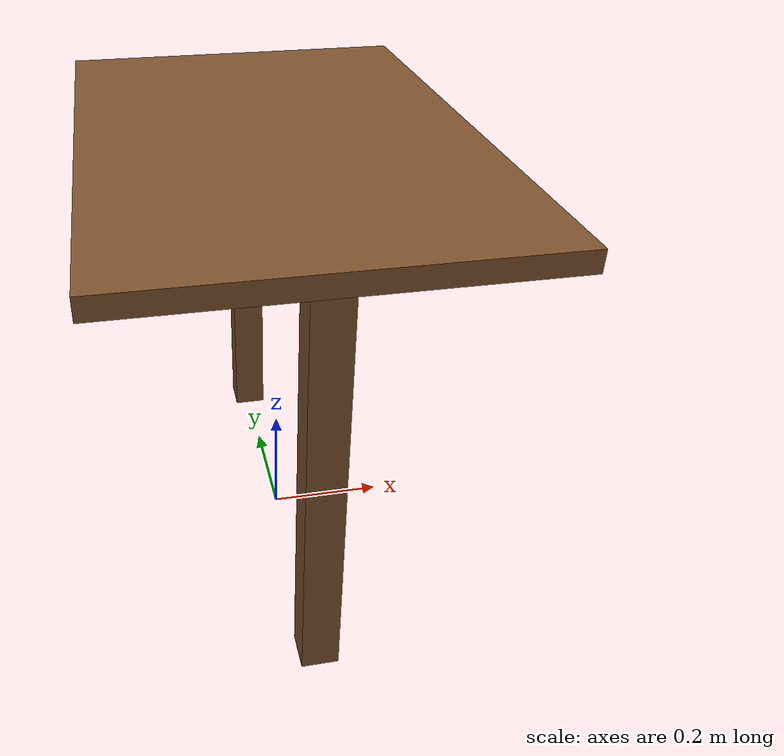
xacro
<?xml version="1.0" ?>
<robot name="lab_phone_table" xmlns:xacro="http://ros.org/wiki/xacro">

<!-- Property List -->
<xacro:property name="pi" value="3.1415926535897931" />
<xacro:property name="table_base_length" value="0.9144" />
<xacro:property name="table_thickness" value="0.033" />
<xacro:property name="table_base_width" value="0.6096" />

<xacro:property name="leg_height" value="0.7366" />
<xacro:property name="leg_length" value="0.06" />
<xacro:property name="leg_width" value="0.06" />

<!-- Color macros -->
<xacro:macro name="material_brown_transparent">
        <material name="brown_transparent">
                <color rgba="${139/255} ${69/255} ${19/255} 0.4" />
        </material>
</xacro:macro>

<!-- Base Link -->
<link name = "table_base">
<inertial>
 <origin xyz = "0 0 ${leg_height}" />
 <mass value = "1.0" />
 <inertia ixx="1" ixy="0"  ixz="0"
               iyy="1" iyz="0"
               izz="1" />
 </inertial>
<visual>
  <origin xyz = "0 0 ${leg_height}" />
  <geometry>
     <box size="${table_base_width} ${table_base_length}  ${table_thickness}"/>
  </geometry>
  <material name="brown_transparent"/>
</visual>
<collision>
  <origin xyz = "0 0 ${leg_height}" />
  <geometry>
     <box size="${table_base_width} ${table_base_length}  ${table_thickness}"/>
  </geometry>
  <material name="brown_transparent"/>
</collision>
</link>

<!--First Leg -->
<link name = "first_leg">
<inertial>
      <mass value="1.0" />
      <origin xyz="0 0 ${-leg_height}" />
      <inertia ixx="0.1" ixy="0"  ixz="0"
               iyy="0.1" iyz="0"
               izz="0.01" />
    </inertial>
<visual>
  <origin xyz="0 0 ${-leg_height}" rpy="0 0 0" />
  <geometry>
        <box size="${leg_width} ${leg_width}  ${leg_height}"/>
  </geometry>
  <material name="brown_transparent"/>
</visual>
<collision>
  <origin xyz="0 0 ${-leg_height}" rpy="0 0 0" />
  <geometry>
        <box size="${leg_width} ${leg_width}  ${leg_height}"/>
  </geometry>
  <material name="brown_transparent"/>
</collision>
</link>

<!-- Base to First Leg-->
<joint name="base_to_first_leg" type="fixed">
  <parent link="table_base"/>
  <child link="first_leg"/>
  <axis xyz="0 0 1"/>
  <origin rpy="0.0 0.0 0.0" xyz="0.0 ${table_base_length/2 - 0.1} ${leg_height*1.5}"/>
</joint>

<!--Second Leg -->
<link name = "second_leg">
<inertial>
      <mass value="1.0" />
      <origin xyz="0 0 ${-leg_height}" />
      <inertia ixx="0.1" ixy="0"  ixz="0"
               iyy="0.1" iyz="0"
               izz="0.01" />
    </inertial>
<visual>
  <origin xyz="0 0 ${-leg_height}" rpy="0 0 0" />
  <geometry>
        <box size="${leg_width} ${leg_width} ${leg_height}"/>
  </geometry>
  <material name="brown_transparent"/>
</visual>
<collision>
  <origin xyz="0 0 ${-leg_height}" rpy="0 0 0" />
  <geometry>
        <box size="${leg_width} ${leg_width} ${leg_height}"/>
  </geometry>
  <material name="brown_transparent"/>
</collision>
</link>

<!-- Base to Second Leg-->
<joint name="base_to_second_leg" type="fixed">
  <parent link="table_base"/>
  <child link="second_leg"/>
  <axis xyz="0 0 1"/>
  <origin rpy="0.0 0.0 0.0" xyz="0.0 -${table_base_length/2 - 0.1} ${leg_height*1.5}"/>
</joint>

<gazebo reference="table_base">
   <material>Gazebo/WoodFloor</material>
   <mu1>50.0</mu1>
   <mu2>50.0</mu2>
   <kp>1000000.0</kp>
   <kd>1.0</kd>
</gazebo>

<gazebo reference="first_leg">
   <material>Gazebo/WoodFloor</material>
</gazebo>

<gazebo reference="second_leg">
   <material>Gazebo/WoodFloor</material>
</gazebo>

</robot>
